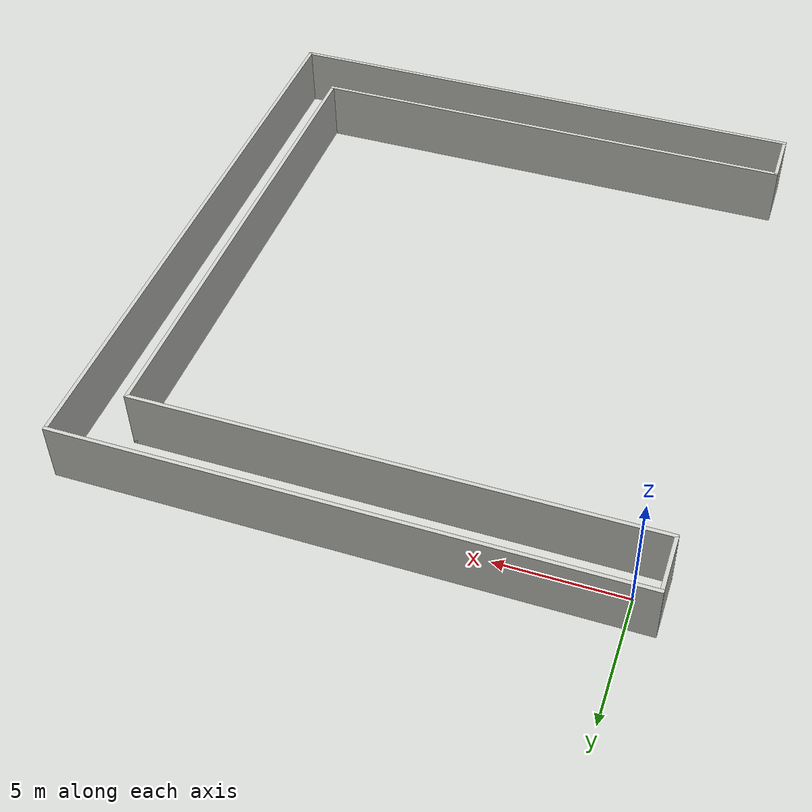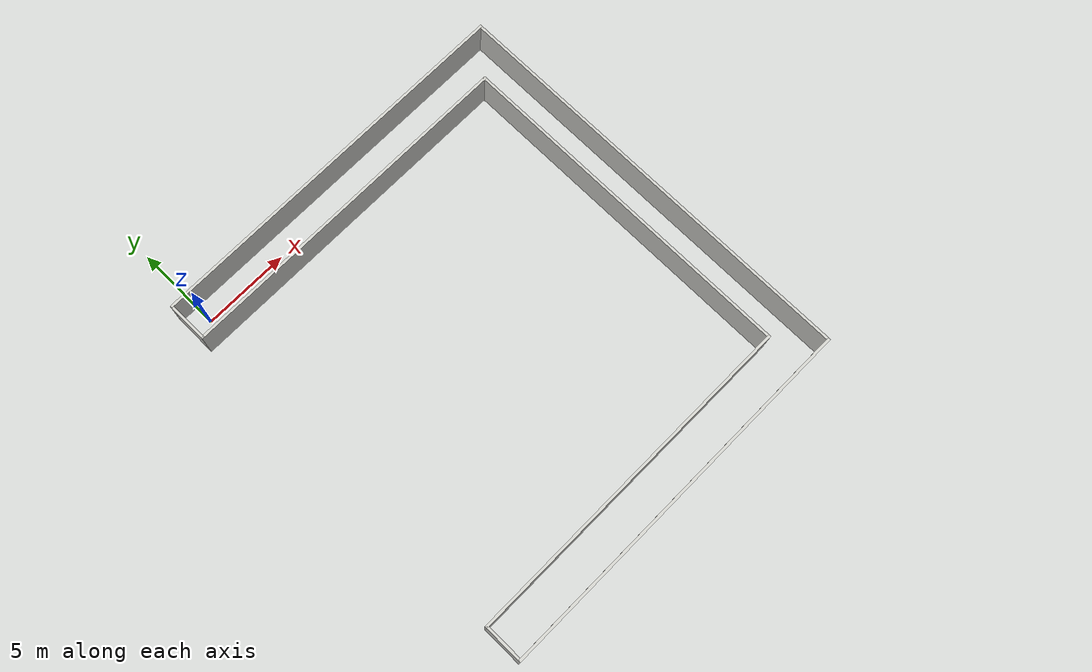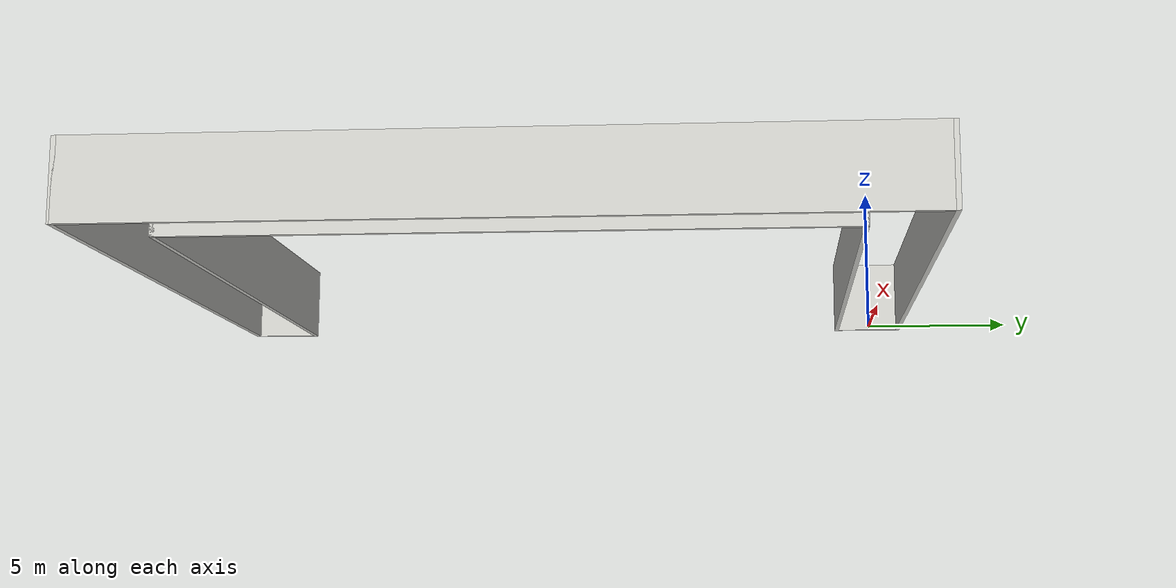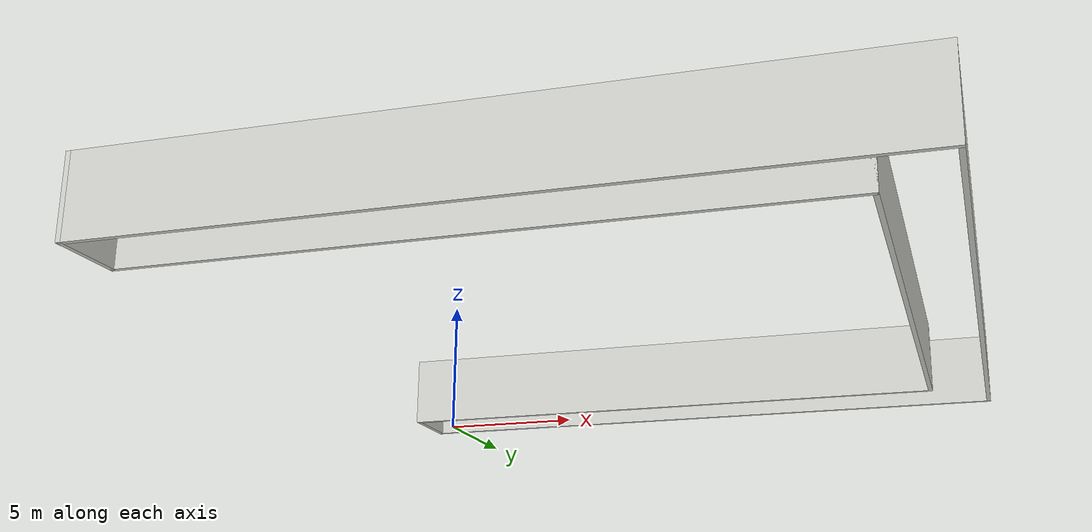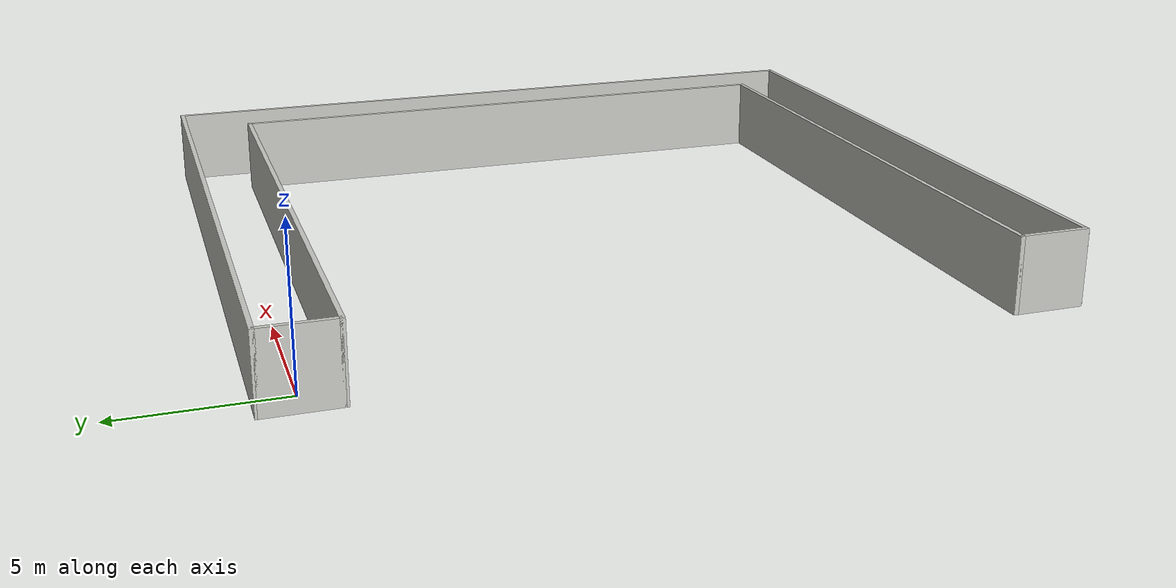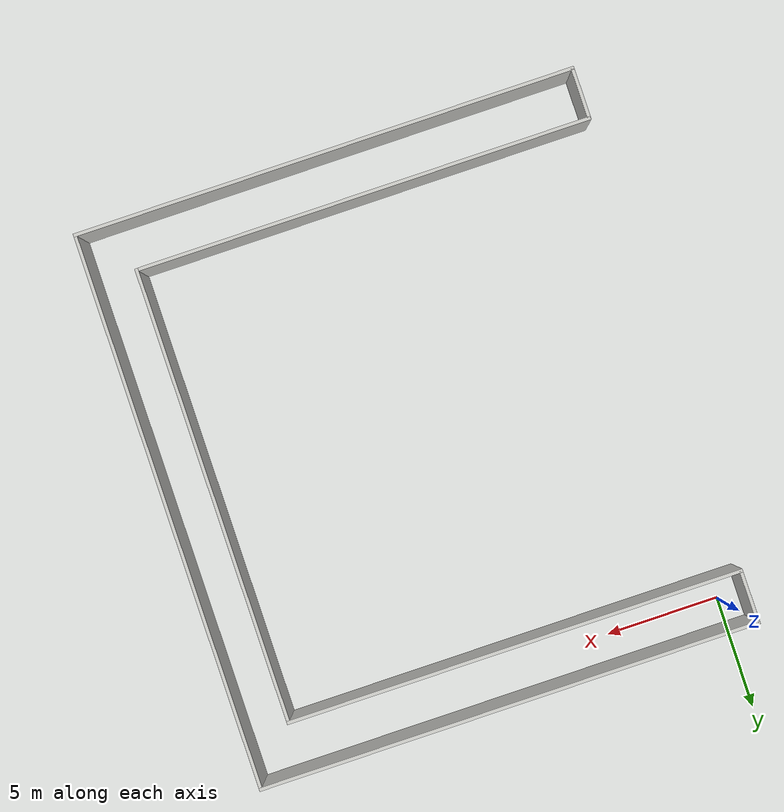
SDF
<?xml version='1.0'?>
<sdf version='1.6'>

    <model name='Test Hallway'>
        <static>1</static>
        <link name='Wall_1'>
            <pose frame=''>-1 0 1.25 0 0 0</pose>
            <self_collide>0</self_collide>
            <kinematic>0</kinematic>

            <visual name='Wall_1_Visual'>
                <pose frame=''>0 0 0 0 0 0</pose>
                <geometry>
                    <box>
                        <size>0.15 2.30 2.5</size>
                    </box>
                </geometry>
                <material>
                    <script>
                        <uri>file://media/materials/scripts/gazebo.material</uri>
                        <name>Gazebo/CeilingTiled</name>
                    </script>
                    <ambient>1 1 1 1</ambient>
                    <diffuse>1 1 1 1</diffuse>
                    <specular>0 0 0 1</specular>
                    <emissive>0 0 0 1</emissive>
                </material>
                <cast_shadows>1</cast_shadows>
                <transparency>0</transparency>
            </visual>

            <collision name='Wall_1_Collision'>
                <pose frame=''>0 0 0 0 0 0</pose>
                <geometry>
                    <box>
                        <size>0.15 2.30 2.5</size>
                    </box>
                </geometry>
            </collision>
        </link>

        <link name='Wall_2'>
            <pose frame=''>9.075 -1.15 1.25 0 0 0</pose>
            <self_collide>0</self_collide>
            <kinematic>0</kinematic>

            <visual name='Wall_2_Visual'>
                <pose frame=''>0 0 0 0 0 0</pose>
                <geometry>
                    <box>
                        <size>20.3 0.15 2.5</size>
                    </box>
                </geometry>
                <material>
                    <script>
                        <uri>file://media/materials/scripts/gazebo.material</uri>
                        <name>Gazebo/CeilingTiled</name>
                    </script>
                    <ambient>1 1 1 1</ambient>
                    <diffuse>1 1 1 1</diffuse>
                    <specular>0 0 0 1</specular>
                    <emissive>0 0 0 1</emissive>
                </material>
                <cast_shadows>1</cast_shadows>
                <transparency>0</transparency>
            </visual>

            <collision name='Wall_2_Collision'>
                <pose frame=''>0 0 0 0 0 0</pose>
                <geometry>
                    <box>
                        <size>20.3 0.15 2.5</size>
                    </box>
                </geometry>
            </collision>
        </link>

        <link name='Wall_3'>
            <pose frame=''>19.15 -11.225 1.25 0 0 0</pose>
            <self_collide>0</self_collide>
            <kinematic>0</kinematic>

            <visual name='Wall_3_Visual'>
                <pose frame=''>0 0 0 0 0 0</pose>
                <geometry>
                    <box>
                        <size>0.15 20.3 2.5</size>
                    </box>
                </geometry>
                <material>
                    <script>
                        <uri>file://media/materials/scripts/gazebo.material</uri>
                        <name>Gazebo/CeilingTiled</name>
                    </script>
                    <ambient>1 1 1 1</ambient>
                    <diffuse>1 1 1 1</diffuse>
                    <specular>0 0 0 1</specular>
                    <emissive>0 0 0 1</emissive>
                </material>
                <cast_shadows>1</cast_shadows>
                <transparency>0</transparency>
            </visual>

            <collision name='Wall_3_Collision'>
                <pose frame=''>0 0 0 0 0 0</pose>
                <geometry>
                    <box>
                        <size>0.15 20.3 2.5</size>
                    </box>
                </geometry>
            </collision>
        </link>

        <link name='Wall_4'>
            <pose frame=''>9.075 -21.3 1.25 0 0 0</pose>
            <self_collide>0</self_collide>
            <kinematic>0</kinematic>

            <visual name='Wall_4_Visual'>
                <pose frame=''>0 0 0 0 0 0</pose>
                <geometry>
                    <box>
                        <size>20.3 0.15 2.5</size>
                    </box>
                </geometry>
                <material>
                    <script>
                        <uri>file://media/materials/scripts/gazebo.material</uri>
                        <name>Gazebo/CeilingTiled</name>
                    </script>
                    <ambient>1 1 1 1</ambient>
                    <diffuse>1 1 1 1</diffuse>
                    <specular>0 0 0 1</specular>
                    <emissive>0 0 0 1</emissive>
                </material>
                <cast_shadows>1</cast_shadows>
                <transparency>0</transparency>
            </visual>

            <collision name='Wall_4_Collision'>
                <pose frame=''>0 0 0 0 0 0</pose>
                <geometry>
                    <box>
                        <size>20.3 0.15 2.5</size>
                    </box>
                </geometry>
            </collision>
        </link>

        <link name='Wall_5'>
            <pose frame=''>-1 -22.45 1.25 0 0 0</pose>
            <self_collide>0</self_collide>
            <kinematic>0</kinematic>

            <visual name='Wall_5_Visual'>
                <pose frame=''>0 0 0 0 0 0</pose>
                <geometry>
                    <box>
                        <size>0.15 2.30 2.5</size>
                    </box>
                </geometry>
                <material>
                    <script>
                        <uri>file://media/materials/scripts/gazebo.material</uri>
                        <name>Gazebo/CeilingTiled</name>
                    </script>
                    <ambient>1 1 1 1</ambient>
                    <diffuse>1 1 1 1</diffuse>
                    <specular>0 0 0 1</specular>
                    <emissive>0 0 0 1</emissive>
                </material>
                <cast_shadows>1</cast_shadows>
                <transparency>0</transparency>
            </visual>

            <collision name='Wall_5_Collision'>
                <pose frame=''>0 0 0 0 0 0</pose>
                <geometry>
                    <box>
                        <size>0.15 2.30 2.5</size>
                    </box>
                </geometry>
            </collision>
        </link>

        <link name='Wall_6'>
            <pose frame=''>10.075 -23.525 1.25 0 0 0</pose>
            <self_collide>0</self_collide>
            <kinematic>0</kinematic>

            <visual name='Wall_6_Visual'>
                <pose frame=''>0 0 0 0 0 0</pose>
                <geometry>
                    <box>
                        <size>22.3 0.15 2.5</size>
                    </box>
                </geometry>
                <material>
                    <script>
                        <uri>file://media/materials/scripts/gazebo.material</uri>
                        <name>Gazebo/CeilingTiled</name>
                    </script>
                    <ambient>1 1 1 1</ambient>
                    <diffuse>1 1 1 1</diffuse>
                    <specular>0 0 0 1</specular>
                    <emissive>0 0 0 1</emissive>
                </material>
                <cast_shadows>1</cast_shadows>
                <transparency>0</transparency>
            </visual>

            <collision name='Wall_6_Collision'>
                <pose frame=''>0 0 0 0 0 0</pose>
                <geometry>
                    <box>
                        <size>22.3 0.15 2.5</size>
                    </box>
                </geometry>
            </collision>
        </link>

        <link name='Wall_7'>
            <pose frame=''>21.15 -11.225 1.25 0 0 0</pose>
            <self_collide>0</self_collide>
            <kinematic>0</kinematic>

            <visual name='Wall_7_Visual'>
                <pose frame=''>0 0 0 0 0 0</pose>
                <geometry>
                    <box>
                        <size>0.15 24.6 2.5</size>
                    </box>
                </geometry>
                <material>
                    <script>
                        <uri>file://media/materials/scripts/gazebo.material</uri>
                        <name>Gazebo/CeilingTiled</name>
                    </script>
                    <ambient>1 1 1 1</ambient>
                    <diffuse>1 1 1 1</diffuse>
                    <specular>0 0 0 1</specular>
                    <emissive>0 0 0 1</emissive>
                </material>
                <cast_shadows>1</cast_shadows>
                <transparency>0</transparency>
            </visual>

            <collision name='Wall_7_Collision'>
                <pose frame=''>0 0 0 0 0 0</pose>
                <geometry>
                    <box>
                        <size>0.15 24.6 2.5</size>
                    </box>
                </geometry>
            </collision>
        </link>

        <link name='Wall_8'>
            <pose frame=''>10.075 1.15 1.25 0 0 0</pose>
            <self_collide>0</self_collide>
            <kinematic>0</kinematic>

            <visual name='Wall_8_Visual'>
                <pose frame=''>0 0 0 0 0 0</pose>
                <geometry>
                    <box>
                        <size>22.3 0.15 2.5</size>
                    </box>
                </geometry>
                <material>
                    <script>
                        <uri>file://media/materials/scripts/gazebo.material</uri>
                        <name>Gazebo/CeilingTiled</name>
                    </script>
                    <ambient>1 1 1 1</ambient>
                    <diffuse>1 1 1 1</diffuse>
                    <specular>0 0 0 1</specular>
                    <emissive>0 0 0 1</emissive>
                </material>
                <cast_shadows>1</cast_shadows>
                <transparency>0</transparency>
            </visual>

            <collision name='Wall_8_Collision'>
                <pose frame=''>0 0 0 0 0 0</pose>
                <geometry>
                    <box>
                        <size>22.3 0.15 2.5</size>
                    </box>
                </geometry>
            </collision>
        </link>

    </model>
</sdf>
